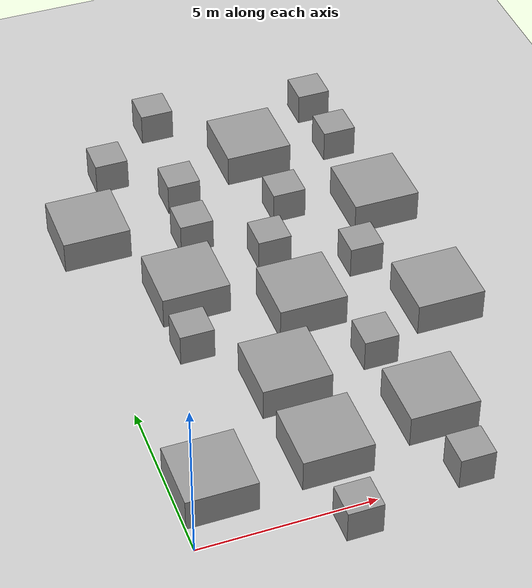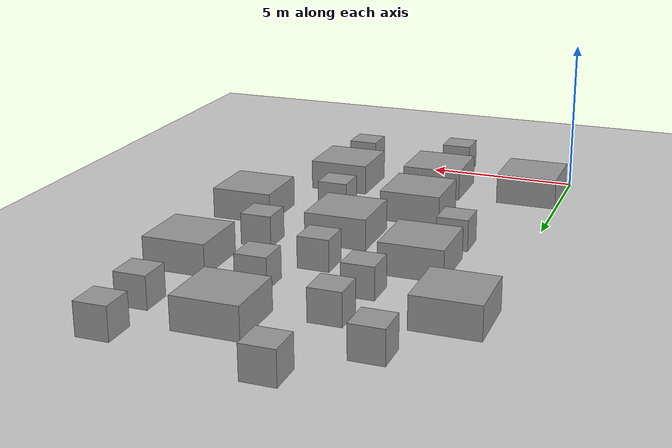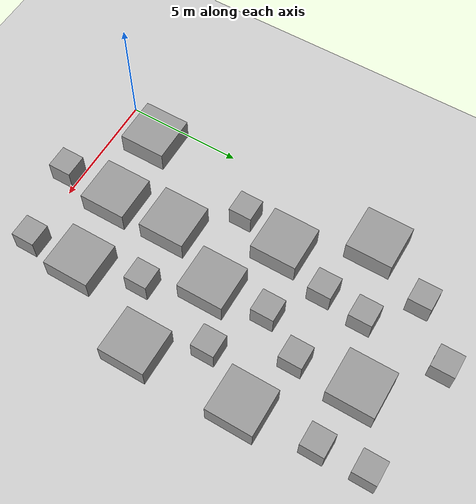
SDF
<sdf version="1.6">
 <world name="default">
  <model name="ground_plane">
   <static>1</static>
   <link name="link">
    <collision name="collision">
     <geometry><plane><normal>0 0 1</normal><size>100 100</size></plane></geometry>
     <surface><friction><ode><mu>100</mu><mu2>50</mu2></ode></friction></surface>
    </collision>
    <visual name="visual">
     <cast_shadows>0</cast_shadows>
     <geometry><plane><normal>0 0 1</normal><size>100 100</size></plane></geometry>
     <material>
      <script><uri>file://media/materials/scripts/gazebo.material</uri><name>Gazebo/Grey</name></script>
     </material>
    </visual>
   </link>
  </model>
  <model name="box3">
   <link name="link_0">
    <inertial>
     <mass>200</mass>
     <inertia><ixx>83.3333</ixx><ixy>0</ixy><ixz>0</ixz><iyy>83.3333</iyy><iyz>0</iyz><izz>133.333</izz></inertia>
     <pose>0 0 1 0 -0 0</pose>
    </inertial>
    <visual name="visual">
     <geometry><box><size>2 2 1</size></box></geometry>
     <material>
      <lighting>1</lighting>
      <script><uri>file://media/materials/scripts/gazebo.material</uri><name>Gazebo/Grey</name></script>
      <shader type="pixel"><normal_map>__default__</normal_map></shader>
      <ambient>0.3 0.3 0.3 1</ambient>
      <diffuse>0.7 0.7 0.7 1</diffuse>
      <specular>0.01 0.01 0.01 1</specular>
      <emissive>0 0 0 1</emissive>
     </material>
    </visual>
    <collision name="collision">
     <geometry><box><size>2 2 1</size></box></geometry>
     <surface>
      <friction>
       <ode><mu>1</mu><mu2>1</mu2><fdir1>0 0 0</fdir1><slip1>0</slip1><slip2>0</slip2></ode>
       <torsional>
        <coefficient>1</coefficient>
        <patch_radius>0</patch_radius>
        <surface_radius>0</surface_radius>
        <use_patch_radius>1</use_patch_radius>
        <ode><slip>0</slip></ode>
       </torsional>
      </friction>
      <bounce><restitution_coefficient>0</restitution_coefficient><threshold>1e+06</threshold></bounce>
      <contact>
       <collide_without_contact>0</collide_without_contact>
       <collide_without_contact_bitmask>1</collide_without_contact_bitmask>
       <collide_bitmask>1</collide_bitmask>
       <ode>
        <soft_cfm>0</soft_cfm>
        <soft_erp>0.2</soft_erp>
        <kp>1e+13</kp>
        <kd>1</kd>
        <max_vel>0.01</max_vel>
        <min_depth>0</min_depth>
       </ode>
       <bullet>
        <split_impulse>1</split_impulse>
        <split_impulse_penetration_threshold>-0.01</split_impulse_penetration_threshold>
        <soft_cfm>0</soft_cfm>
        <soft_erp>0.2</soft_erp>
        <kp>1e+13</kp>
        <kd>1</kd>
       </bullet>
      </contact>
     </surface>
    </collision>
   </link>
   <static>0</static>
   <pose>1.01568 1.72958 0.499999 -1e-06 -2e-06 4.8e-05</pose>
  </model>
  <model name="box3_clone">
   <link name="link_0">
    <inertial>
     <mass>200</mass>
     <inertia><ixx>83.3333</ixx><ixy>0</ixy><ixz>0</ixz><iyy>83.3333</iyy><iyz>0</iyz><izz>133.333</izz></inertia>
     <pose>0 0 1 0 -0 0</pose>
    </inertial>
    <visual name="visual">
     <geometry><box><size>2 2 1</size></box></geometry>
     <material>
      <lighting>1</lighting>
      <script><uri>file://media/materials/scripts/gazebo.material</uri><name>Gazebo/Grey</name></script>
      <shader type="pixel"><normal_map>__default__</normal_map></shader>
      <ambient>0.3 0.3 0.3 1</ambient>
      <diffuse>0.7 0.7 0.7 1</diffuse>
      <specular>0.01 0.01 0.01 1</specular>
      <emissive>0 0 0 1</emissive>
     </material>
    </visual>
    <collision name="collision">
     <geometry><box><size>2 2 1</size></box></geometry>
     <surface>
      <friction>
       <ode><mu>1</mu><mu2>1</mu2><fdir1>0 0 0</fdir1><slip1>0</slip1><slip2>0</slip2></ode>
       <torsional>
        <coefficient>1</coefficient>
        <patch_radius>0</patch_radius>
        <surface_radius>0</surface_radius>
        <use_patch_radius>1</use_patch_radius>
        <ode><slip>0</slip></ode>
       </torsional>
      </friction>
      <bounce><restitution_coefficient>0</restitution_coefficient><threshold>1e+06</threshold></bounce>
      <contact>
       <collide_without_contact>0</collide_without_contact>
       <collide_without_contact_bitmask>1</collide_without_contact_bitmask>
       <collide_bitmask>1</collide_bitmask>
       <ode>
        <soft_cfm>0</soft_cfm>
        <soft_erp>0.2</soft_erp>
        <kp>1e+13</kp>
        <kd>1</kd>
        <max_vel>0.01</max_vel>
        <min_depth>0</min_depth>
       </ode>
       <bullet>
        <split_impulse>1</split_impulse>
        <split_impulse_penetration_threshold>-0.01</split_impulse_penetration_threshold>
        <soft_cfm>0</soft_cfm>
        <soft_erp>0.2</soft_erp>
        <kp>1e+13</kp>
        <kd>1</kd>
       </bullet>
      </contact>
     </surface>
    </collision>
   </link>
   <static>0</static>
   <pose>4.28423 1.95795 0.499996 1e-06 3e-06 0.000328</pose>
  </model>
  <model name="box3_clone_0">
   <link name="link_0">
    <inertial>
     <mass>200</mass>
     <inertia><ixx>83.3333</ixx><ixy>0</ixy><ixz>0</ixz><iyy>83.3333</iyy><iyz>0</iyz><izz>133.333</izz></inertia>
     <pose>0 0 1 0 -0 0</pose>
    </inertial>
    <visual name="visual">
     <geometry><box><size>2 2 1</size></box></geometry>
     <material>
      <lighting>1</lighting>
      <script><uri>file://media/materials/scripts/gazebo.material</uri><name>Gazebo/Grey</name></script>
      <shader type="pixel"><normal_map>__default__</normal_map></shader>
      <ambient>0.3 0.3 0.3 1</ambient>
      <diffuse>0.7 0.7 0.7 1</diffuse>
      <specular>0.01 0.01 0.01 1</specular>
      <emissive>0 0 0 1</emissive>
     </material>
    </visual>
    <collision name="collision">
     <geometry><box><size>2 2 1</size></box></geometry>
     <surface>
      <friction>
       <ode><mu>1</mu><mu2>1</mu2><fdir1>0 0 0</fdir1><slip1>0</slip1><slip2>0</slip2></ode>
       <torsional>
        <coefficient>1</coefficient>
        <patch_radius>0</patch_radius>
        <surface_radius>0</surface_radius>
        <use_patch_radius>1</use_patch_radius>
        <ode><slip>0</slip></ode>
       </torsional>
      </friction>
      <bounce><restitution_coefficient>0</restitution_coefficient><threshold>1e+06</threshold></bounce>
      <contact>
       <collide_without_contact>0</collide_without_contact>
       <collide_without_contact_bitmask>1</collide_without_contact_bitmask>
       <collide_bitmask>1</collide_bitmask>
       <ode>
        <soft_cfm>0</soft_cfm>
        <soft_erp>0.2</soft_erp>
        <kp>1e+13</kp>
        <kd>1</kd>
        <max_vel>0.01</max_vel>
        <min_depth>0</min_depth>
       </ode>
       <bullet>
        <split_impulse>1</split_impulse>
        <split_impulse_penetration_threshold>-0.01</split_impulse_penetration_threshold>
        <soft_cfm>0</soft_cfm>
        <soft_erp>0.2</soft_erp>
        <kp>1e+13</kp>
        <kd>1</kd>
       </bullet>
      </contact>
     </surface>
    </collision>
   </link>
   <static>0</static>
   <pose>7.49997 2.45483 0.499996 3e-06 1e-06 0.00012</pose>
  </model>
  <model name="box3_clone_1">
   <link name="link_0">
    <inertial>
     <mass>200</mass>
     <inertia><ixx>83.3333</ixx><ixy>0</ixy><ixz>0</ixz><iyy>83.3333</iyy><iyz>0</iyz><izz>133.333</izz></inertia>
     <pose>0 0 1 0 -0 0</pose>
    </inertial>
    <visual name="visual">
     <geometry><box><size>2 2 1</size></box></geometry>
     <material>
      <lighting>1</lighting>
      <script><uri>file://media/materials/scripts/gazebo.material</uri><name>Gazebo/Grey</name></script>
      <shader type="pixel"><normal_map>__default__</normal_map></shader>
      <ambient>0.3 0.3 0.3 1</ambient>
      <diffuse>0.7 0.7 0.7 1</diffuse>
      <specular>0.01 0.01 0.01 1</specular>
      <emissive>0 0 0 1</emissive>
     </material>
    </visual>
    <collision name="collision">
     <geometry><box><size>2 2 1</size></box></geometry>
     <surface>
      <friction>
       <ode><mu>1</mu><mu2>1</mu2><fdir1>0 0 0</fdir1><slip1>0</slip1><slip2>0</slip2></ode>
       <torsional>
        <coefficient>1</coefficient>
        <patch_radius>0</patch_radius>
        <surface_radius>0</surface_radius>
        <use_patch_radius>1</use_patch_radius>
        <ode><slip>0</slip></ode>
       </torsional>
      </friction>
      <bounce><restitution_coefficient>0</restitution_coefficient><threshold>1e+06</threshold></bounce>
      <contact>
       <collide_without_contact>0</collide_without_contact>
       <collide_without_contact_bitmask>1</collide_without_contact_bitmask>
       <collide_bitmask>1</collide_bitmask>
       <ode>
        <soft_cfm>0</soft_cfm>
        <soft_erp>0.2</soft_erp>
        <kp>1e+13</kp>
        <kd>1</kd>
        <max_vel>0.01</max_vel>
        <min_depth>0</min_depth>
       </ode>
       <bullet>
        <split_impulse>1</split_impulse>
        <split_impulse_penetration_threshold>-0.01</split_impulse_penetration_threshold>
        <soft_cfm>0</soft_cfm>
        <soft_erp>0.2</soft_erp>
        <kp>1e+13</kp>
        <kd>1</kd>
       </bullet>
      </contact>
     </surface>
    </collision>
   </link>
   <static>0</static>
   <pose>4.18679 4.69973 0.499996 -1e-06 -3e-06 0.00033</pose>
  </model>
  <model name="box_clone_1">
   <link name="link_3">
    <inertial>
     <mass>1</mass>
     <inertia>
      <ixx>0.166667</ixx>
      <ixy>0</ixy>
      <ixz>0</ixz>
      <iyy>0.166667</iyy>
      <iyz>0</iyz>
      <izz>0.166667</izz>
     </inertia>
    </inertial>
    <pose>-0.10623 1.19174 0.5 0 -0 0</pose>
    <visual name="visual">
     <geometry><box><size>1 1 1</size></box></geometry>
     <material>
      <lighting>1</lighting>
      <script><uri>file://media/materials/scripts/gazebo.material</uri><name>Gazebo/Grey</name></script>
      <shader type="pixel"/>
     </material>
    </visual>
    <collision name="collision">
     <geometry><box><size>1 1 1</size></box></geometry>
     <surface>
      <friction>
       <ode><mu>1</mu><mu2>1</mu2><fdir1>0 0 0</fdir1><slip1>0</slip1><slip2>0</slip2></ode>
       <torsional>
        <coefficient>1</coefficient>
        <patch_radius>0</patch_radius>
        <surface_radius>0</surface_radius>
        <use_patch_radius>1</use_patch_radius>
        <ode><slip>0</slip></ode>
       </torsional>
      </friction>
      <bounce><restitution_coefficient>0</restitution_coefficient><threshold>1e+06</threshold></bounce>
      <contact>
       <collide_without_contact>0</collide_without_contact>
       <collide_without_contact_bitmask>1</collide_without_contact_bitmask>
       <collide_bitmask>1</collide_bitmask>
       <ode>
        <soft_cfm>0</soft_cfm>
        <soft_erp>0.2</soft_erp>
        <kp>1e+13</kp>
        <kd>1</kd>
        <max_vel>0.01</max_vel>
        <min_depth>0</min_depth>
       </ode>
       <bullet>
        <split_impulse>1</split_impulse>
        <split_impulse_penetration_threshold>-0.01</split_impulse_penetration_threshold>
        <soft_cfm>0</soft_cfm>
        <soft_erp>0.2</soft_erp>
        <kp>1e+13</kp>
        <kd>1</kd>
       </bullet>
      </contact>
     </surface>
    </collision>
   </link>
   <static>0</static>
   <pose>2.36939 5.72598 0 0 -0 0</pose>
  </model>
  <model name="box3_clone_1_clone">
   <link name="link_0">
    <inertial>
     <mass>200</mass>
     <inertia><ixx>83.3333</ixx><ixy>0</ixy><ixz>0</ixz><iyy>83.3333</iyy><iyz>0</iyz><izz>133.333</izz></inertia>
     <pose>0 0 1 0 -0 0</pose>
    </inertial>
    <visual name="visual">
     <geometry><box><size>2 2 1</size></box></geometry>
     <material>
      <lighting>1</lighting>
      <script><uri>file://media/materials/scripts/gazebo.material</uri><name>Gazebo/Grey</name></script>
      <shader type="pixel"><normal_map>__default__</normal_map></shader>
      <ambient>0.3 0.3 0.3 1</ambient>
      <diffuse>0.7 0.7 0.7 1</diffuse>
      <specular>0.01 0.01 0.01 1</specular>
      <emissive>0 0 0 1</emissive>
     </material>
    </visual>
    <collision name="collision">
     <geometry><box><size>2 2 1</size></box></geometry>
     <surface>
      <friction>
       <ode><mu>1</mu><mu2>1</mu2><fdir1>0 0 0</fdir1><slip1>0</slip1><slip2>0</slip2></ode>
       <torsional>
        <coefficient>1</coefficient>
        <patch_radius>0</patch_radius>
        <surface_radius>0</surface_radius>
        <use_patch_radius>1</use_patch_radius>
        <ode><slip>0</slip></ode>
       </torsional>
      </friction>
      <bounce><restitution_coefficient>0</restitution_coefficient><threshold>1e+06</threshold></bounce>
      <contact>
       <collide_without_contact>0</collide_without_contact>
       <collide_without_contact_bitmask>1</collide_without_contact_bitmask>
       <collide_bitmask>1</collide_bitmask>
       <ode>
        <soft_cfm>0</soft_cfm>
        <soft_erp>0.2</soft_erp>
        <kp>1e+13</kp>
        <kd>1</kd>
        <max_vel>0.01</max_vel>
        <min_depth>0</min_depth>
       </ode>
       <bullet>
        <split_impulse>1</split_impulse>
        <split_impulse_penetration_threshold>-0.01</split_impulse_penetration_threshold>
        <soft_cfm>0</soft_cfm>
        <soft_erp>0.2</soft_erp>
        <kp>1e+13</kp>
        <kd>1</kd>
       </bullet>
      </contact>
     </surface>
    </collision>
   </link>
   <static>0</static>
   <pose>2.77209 8.98695 0.499996 3e-06 1e-06 0.000347</pose>
  </model>
  <model name="box3_clone_1_clone_0">
   <link name="link_0">
    <inertial>
     <mass>200</mass>
     <inertia><ixx>83.3333</ixx><ixy>0</ixy><ixz>0</ixz><iyy>83.3333</iyy><iyz>0</iyz><izz>133.333</izz></inertia>
     <pose>0 0 1 0 -0 0</pose>
    </inertial>
    <visual name="visual">
     <geometry><box><size>2 2 1</size></box></geometry>
     <material>
      <lighting>1</lighting>
      <script><uri>file://media/materials/scripts/gazebo.material</uri><name>Gazebo/Grey</name></script>
      <shader type="pixel"><normal_map>__default__</normal_map></shader>
      <ambient>0.3 0.3 0.3 1</ambient>
      <diffuse>0.7 0.7 0.7 1</diffuse>
      <specular>0.01 0.01 0.01 1</specular>
      <emissive>0 0 0 1</emissive>
     </material>
    </visual>
    <collision name="collision">
     <geometry><box><size>2 2 1</size></box></geometry>
     <surface>
      <friction>
       <ode><mu>1</mu><mu2>1</mu2><fdir1>0 0 0</fdir1><slip1>0</slip1><slip2>0</slip2></ode>
       <torsional>
        <coefficient>1</coefficient>
        <patch_radius>0</patch_radius>
        <surface_radius>0</surface_radius>
        <use_patch_radius>1</use_patch_radius>
        <ode><slip>0</slip></ode>
       </torsional>
      </friction>
      <bounce><restitution_coefficient>0</restitution_coefficient><threshold>1e+06</threshold></bounce>
      <contact>
       <collide_without_contact>0</collide_without_contact>
       <collide_without_contact_bitmask>1</collide_without_contact_bitmask>
       <collide_bitmask>1</collide_bitmask>
       <ode>
        <soft_cfm>0</soft_cfm>
        <soft_erp>0.2</soft_erp>
        <kp>1e+13</kp>
        <kd>1</kd>
        <max_vel>0.01</max_vel>
        <min_depth>0</min_depth>
       </ode>
       <bullet>
        <split_impulse>1</split_impulse>
        <split_impulse_penetration_threshold>-0.01</split_impulse_penetration_threshold>
        <soft_cfm>0</soft_cfm>
        <soft_erp>0.2</soft_erp>
        <kp>1e+13</kp>
        <kd>1</kd>
       </bullet>
      </contact>
     </surface>
    </collision>
   </link>
   <static>0</static>
   <pose>5.69777 7.42639 0.5 0 -0 0.000652</pose>
  </model>
  <model name="box_clone_1_clone">
   <link name="link_3">
    <inertial>
     <mass>1</mass>
     <inertia>
      <ixx>0.166667</ixx>
      <ixy>0</ixy>
      <ixz>0</ixz>
      <iyy>0.166667</iyy>
      <iyz>0</iyz>
      <izz>0.166667</izz>
     </inertia>
    </inertial>
    <pose>-0.10623 1.19174 0.5 0 -0 0</pose>
    <visual name="visual">
     <geometry><box><size>1 1 1</size></box></geometry>
     <material>
      <lighting>1</lighting>
      <script><uri>file://media/materials/scripts/gazebo.material</uri><name>Gazebo/Grey</name></script>
      <shader type="pixel"/>
     </material>
    </visual>
    <collision name="collision">
     <geometry><box><size>1 1 1</size></box></geometry>
     <surface>
      <friction>
       <ode><mu>1</mu><mu2>1</mu2><fdir1>0 0 0</fdir1><slip1>0</slip1><slip2>0</slip2></ode>
       <torsional>
        <coefficient>1</coefficient>
        <patch_radius>0</patch_radius>
        <surface_radius>0</surface_radius>
        <use_patch_radius>1</use_patch_radius>
        <ode><slip>0</slip></ode>
       </torsional>
      </friction>
      <bounce><restitution_coefficient>0</restitution_coefficient><threshold>1e+06</threshold></bounce>
      <contact>
       <collide_without_contact>0</collide_without_contact>
       <collide_without_contact_bitmask>1</collide_without_contact_bitmask>
       <collide_bitmask>1</collide_bitmask>
       <ode>
        <soft_cfm>0</soft_cfm>
        <soft_erp>0.2</soft_erp>
        <kp>1e+13</kp>
        <kd>1</kd>
        <max_vel>0.01</max_vel>
        <min_depth>0</min_depth>
       </ode>
       <bullet>
        <split_impulse>1</split_impulse>
        <split_impulse_penetration_threshold>-0.01</split_impulse_penetration_threshold>
        <soft_cfm>0</soft_cfm>
        <soft_erp>0.2</soft_erp>
        <kp>1e+13</kp>
        <kd>1</kd>
       </bullet>
      </contact>
     </surface>
    </collision>
   </link>
   <static>0</static>
   <pose>7.04939 3.79897 0 0 -0 0</pose>
  </model>
  <model name="box3_clone_0_clone">
   <link name="link_0">
    <inertial>
     <mass>200</mass>
     <inertia><ixx>83.3333</ixx><ixy>0</ixy><ixz>0</ixz><iyy>83.3333</iyy><iyz>0</iyz><izz>133.333</izz></inertia>
     <pose>0 0 1 0 -0 0</pose>
    </inertial>
    <visual name="visual">
     <geometry><box><size>2 2 1</size></box></geometry>
     <material>
      <lighting>1</lighting>
      <script><uri>file://media/materials/scripts/gazebo.material</uri><name>Gazebo/Grey</name></script>
      <shader type="pixel"><normal_map>__default__</normal_map></shader>
      <ambient>0.3 0.3 0.3 1</ambient>
      <diffuse>0.7 0.7 0.7 1</diffuse>
      <specular>0.01 0.01 0.01 1</specular>
      <emissive>0 0 0 1</emissive>
     </material>
    </visual>
    <collision name="collision">
     <geometry><box><size>2 2 1</size></box></geometry>
     <surface>
      <friction>
       <ode><mu>1</mu><mu2>1</mu2><fdir1>0 0 0</fdir1><slip1>0</slip1><slip2>0</slip2></ode>
       <torsional>
        <coefficient>1</coefficient>
        <patch_radius>0</patch_radius>
        <surface_radius>0</surface_radius>
        <use_patch_radius>1</use_patch_radius>
        <ode><slip>0</slip></ode>
       </torsional>
      </friction>
      <bounce><restitution_coefficient>0</restitution_coefficient><threshold>1e+06</threshold></bounce>
      <contact>
       <collide_without_contact>0</collide_without_contact>
       <collide_without_contact_bitmask>1</collide_without_contact_bitmask>
       <collide_bitmask>1</collide_bitmask>
       <ode>
        <soft_cfm>0</soft_cfm>
        <soft_erp>0.2</soft_erp>
        <kp>1e+13</kp>
        <kd>1</kd>
        <max_vel>0.01</max_vel>
        <min_depth>0</min_depth>
       </ode>
       <bullet>
        <split_impulse>1</split_impulse>
        <split_impulse_penetration_threshold>-0.01</split_impulse_penetration_threshold>
        <soft_cfm>0</soft_cfm>
        <soft_erp>0.2</soft_erp>
        <kp>1e+13</kp>
        <kd>1</kd>
       </bullet>
      </contact>
     </surface>
    </collision>
   </link>
   <static>0</static>
   <pose>9.39449 6.3108 0.499996 3e-06 -1e-06 0.000264</pose>
  </model>
  <model name="box3_clone_0_clone_0">
   <link name="link_0">
    <inertial>
     <mass>200</mass>
     <inertia><ixx>83.3333</ixx><ixy>0</ixy><ixz>0</ixz><iyy>83.3333</iyy><iyz>0</iyz><izz>133.333</izz></inertia>
     <pose>0 0 1 0 -0 0</pose>
    </inertial>
    <visual name="visual">
     <geometry><box><size>2 2 1</size></box></geometry>
     <material>
      <lighting>1</lighting>
      <script><uri>file://media/materials/scripts/gazebo.material</uri><name>Gazebo/Grey</name></script>
      <shader type="pixel"><normal_map>__default__</normal_map></shader>
      <ambient>0.3 0.3 0.3 1</ambient>
      <diffuse>0.7 0.7 0.7 1</diffuse>
      <specular>0.01 0.01 0.01 1</specular>
      <emissive>0 0 0 1</emissive>
     </material>
    </visual>
    <collision name="collision">
     <geometry><box><size>2 2 1</size></box></geometry>
     <surface>
      <friction>
       <ode><mu>1</mu><mu2>1</mu2><fdir1>0 0 0</fdir1><slip1>0</slip1><slip2>0</slip2></ode>
       <torsional>
        <coefficient>1</coefficient>
        <patch_radius>0</patch_radius>
        <surface_radius>0</surface_radius>
        <use_patch_radius>1</use_patch_radius>
        <ode><slip>0</slip></ode>
       </torsional>
      </friction>
      <bounce><restitution_coefficient>0</restitution_coefficient><threshold>1e+06</threshold></bounce>
      <contact>
       <collide_without_contact>0</collide_without_contact>
       <collide_without_contact_bitmask>1</collide_without_contact_bitmask>
       <collide_bitmask>1</collide_bitmask>
       <ode>
        <soft_cfm>0</soft_cfm>
        <soft_erp>0.2</soft_erp>
        <kp>1e+13</kp>
        <kd>1</kd>
        <max_vel>0.01</max_vel>
        <min_depth>0</min_depth>
       </ode>
       <bullet>
        <split_impulse>1</split_impulse>
        <split_impulse_penetration_threshold>-0.01</split_impulse_penetration_threshold>
        <soft_cfm>0</soft_cfm>
        <soft_erp>0.2</soft_erp>
        <kp>1e+13</kp>
        <kd>1</kd>
       </bullet>
      </contact>
     </surface>
    </collision>
   </link>
   <static>0</static>
   <pose>9.34656 10.8996 0.5 0 -0 0.000214</pose>
  </model>
  <model name="box_clone_1_clone_clone">
   <link name="link_3">
    <inertial>
     <mass>1</mass>
     <inertia>
      <ixx>0.166667</ixx>
      <ixy>0</ixy>
      <ixz>0</ixz>
      <iyy>0.166667</iyy>
      <iyz>0</iyz>
      <izz>0.166667</izz>
     </inertia>
    </inertial>
    <pose>-0.10623 1.19174 0.5 0 -0 0</pose>
    <visual name="visual">
     <geometry><box><size>1 1 1</size></box></geometry>
     <material>
      <lighting>1</lighting>
      <script><uri>file://media/materials/scripts/gazebo.material</uri><name>Gazebo/Grey</name></script>
      <shader type="pixel"/>
     </material>
    </visual>
    <collision name="collision">
     <geometry><box><size>1 1 1</size></box></geometry>
     <surface>
      <friction>
       <ode><mu>1</mu><mu2>1</mu2><fdir1>0 0 0</fdir1><slip1>0</slip1><slip2>0</slip2></ode>
       <torsional>
        <coefficient>1</coefficient>
        <patch_radius>0</patch_radius>
        <surface_radius>0</surface_radius>
        <use_patch_radius>1</use_patch_radius>
        <ode><slip>0</slip></ode>
       </torsional>
      </friction>
      <bounce><restitution_coefficient>0</restitution_coefficient><threshold>1e+06</threshold></bounce>
      <contact>
       <collide_without_contact>0</collide_without_contact>
       <collide_without_contact_bitmask>1</collide_without_contact_bitmask>
       <collide_bitmask>1</collide_bitmask>
       <ode>
        <soft_cfm>0</soft_cfm>
        <soft_erp>0.2</soft_erp>
        <kp>1e+13</kp>
        <kd>1</kd>
        <max_vel>0.01</max_vel>
        <min_depth>0</min_depth>
       </ode>
       <bullet>
        <split_impulse>1</split_impulse>
        <split_impulse_penetration_threshold>-0.01</split_impulse_penetration_threshold>
        <soft_cfm>0</soft_cfm>
        <soft_erp>0.2</soft_erp>
        <kp>1e+13</kp>
        <kd>1</kd>
       </bullet>
      </contact>
     </surface>
    </collision>
   </link>
   <static>0</static>
   <pose>8.11451 7.47935 -0 0 -0 0</pose>
  </model>
  <model name="box_clone_1_clone_clone_clone">
   <link name="link_3">
    <inertial>
     <mass>1</mass>
     <inertia>
      <ixx>0.166667</ixx>
      <ixy>0</ixy>
      <ixz>0</ixz>
      <iyy>0.166667</iyy>
      <iyz>0</iyz>
      <izz>0.166667</izz>
     </inertia>
    </inertial>
    <pose>-0.10623 1.19174 0.5 0 -0 0</pose>
    <visual name="visual">
     <geometry><box><size>1 1 1</size></box></geometry>
     <material>
      <lighting>1</lighting>
      <script><uri>file://media/materials/scripts/gazebo.material</uri><name>Gazebo/Grey</name></script>
      <shader type="pixel"/>
     </material>
    </visual>
    <collision name="collision">
     <geometry><box><size>1 1 1</size></box></geometry>
     <surface>
      <friction>
       <ode><mu>1</mu><mu2>1</mu2><fdir1>0 0 0</fdir1><slip1>0</slip1><slip2>0</slip2></ode>
       <torsional>
        <coefficient>1</coefficient>
        <patch_radius>0</patch_radius>
        <surface_radius>0</surface_radius>
        <use_patch_radius>1</use_patch_radius>
        <ode><slip>0</slip></ode>
       </torsional>
      </friction>
      <bounce><restitution_coefficient>0</restitution_coefficient><threshold>1e+06</threshold></bounce>
      <contact>
       <collide_without_contact>0</collide_without_contact>
       <collide_without_contact_bitmask>1</collide_without_contact_bitmask>
       <collide_bitmask>1</collide_bitmask>
       <ode>
        <soft_cfm>0</soft_cfm>
        <soft_erp>0.2</soft_erp>
        <kp>1e+13</kp>
        <kd>1</kd>
        <max_vel>0.01</max_vel>
        <min_depth>0</min_depth>
       </ode>
       <bullet>
        <split_impulse>1</split_impulse>
        <split_impulse_penetration_threshold>-0.01</split_impulse_penetration_threshold>
        <soft_cfm>0</soft_cfm>
        <soft_erp>0.2</soft_erp>
        <kp>1e+13</kp>
        <kd>1</kd>
       </bullet>
      </contact>
     </surface>
    </collision>
   </link>
   <static>0</static>
   <pose>5.72926 8.66382 0 0 -0 0</pose>
  </model>
  <model name="box_clone_1_clone_clone_clone_0">
   <link name="link_3">
    <inertial>
     <mass>1</mass>
     <inertia>
      <ixx>0.166667</ixx>
      <ixy>0</ixy>
      <ixz>0</ixz>
      <iyy>0.166667</iyy>
      <iyz>0</iyz>
      <izz>0.166667</izz>
     </inertia>
    </inertial>
    <pose>-0.10623 1.19174 0.5 0 -0 0</pose>
    <visual name="visual">
     <geometry><box><size>1 1 1</size></box></geometry>
     <material>
      <lighting>1</lighting>
      <script><uri>file://media/materials/scripts/gazebo.material</uri><name>Gazebo/Grey</name></script>
      <shader type="pixel"/>
     </material>
    </visual>
    <collision name="collision">
     <geometry><box><size>1 1 1</size></box></geometry>
     <surface>
      <friction>
       <ode><mu>1</mu><mu2>1</mu2><fdir1>0 0 0</fdir1><slip1>0</slip1><slip2>0</slip2></ode>
       <torsional>
        <coefficient>1</coefficient>
        <patch_radius>0</patch_radius>
        <surface_radius>0</surface_radius>
        <use_patch_radius>1</use_patch_radius>
        <ode><slip>0</slip></ode>
       </torsional>
      </friction>
      <bounce><restitution_coefficient>0</restitution_coefficient><threshold>1e+06</threshold></bounce>
      <contact>
       <collide_without_contact>0</collide_without_contact>
       <collide_without_contact_bitmask>1</collide_without_contact_bitmask>
       <collide_bitmask>1</collide_bitmask>
       <ode>
        <soft_cfm>0</soft_cfm>
        <soft_erp>0.2</soft_erp>
        <kp>1e+13</kp>
        <kd>1</kd>
        <max_vel>0.01</max_vel>
        <min_depth>0</min_depth>
       </ode>
       <bullet>
        <split_impulse>1</split_impulse>
        <split_impulse_penetration_threshold>-0.01</split_impulse_penetration_threshold>
        <soft_cfm>0</soft_cfm>
        <soft_erp>0.2</soft_erp>
        <kp>1e+13</kp>
        <kd>1</kd>
       </bullet>
      </contact>
     </surface>
    </collision>
   </link>
   <static>0</static>
   <pose>3.8214 10.078 0 0 -0 0</pose>
  </model>
  <model name="box_clone_1_clone_clone_clone_1">
   <link name="link_3">
    <inertial>
     <mass>1</mass>
     <inertia>
      <ixx>0.166667</ixx>
      <ixy>0</ixy>
      <ixz>0</ixz>
      <iyy>0.166667</iyy>
      <iyz>0</iyz>
      <izz>0.166667</izz>
     </inertia>
    </inertial>
    <pose>-0.10623 1.19174 0.5 0 -0 0</pose>
    <visual name="visual">
     <geometry><box><size>1 1 1</size></box></geometry>
     <material>
      <lighting>1</lighting>
      <script><uri>file://media/materials/scripts/gazebo.material</uri><name>Gazebo/Grey</name></script>
      <shader type="pixel"/>
     </material>
    </visual>
    <collision name="collision">
     <geometry><box><size>1 1 1</size></box></geometry>
     <surface>
      <friction>
       <ode><mu>1</mu><mu2>1</mu2><fdir1>0 0 0</fdir1><slip1>0</slip1><slip2>0</slip2></ode>
       <torsional>
        <coefficient>1</coefficient>
        <patch_radius>0</patch_radius>
        <surface_radius>0</surface_radius>
        <use_patch_radius>1</use_patch_radius>
        <ode><slip>0</slip></ode>
       </torsional>
      </friction>
      <bounce><restitution_coefficient>0</restitution_coefficient><threshold>1e+06</threshold></bounce>
      <contact>
       <collide_without_contact>0</collide_without_contact>
       <collide_without_contact_bitmask>1</collide_without_contact_bitmask>
       <collide_bitmask>1</collide_bitmask>
       <ode>
        <soft_cfm>0</soft_cfm>
        <soft_erp>0.2</soft_erp>
        <kp>1e+13</kp>
        <kd>1</kd>
        <max_vel>0.01</max_vel>
        <min_depth>0</min_depth>
       </ode>
       <bullet>
        <split_impulse>1</split_impulse>
        <split_impulse_penetration_threshold>-0.01</split_impulse_penetration_threshold>
        <soft_cfm>0</soft_cfm>
        <soft_erp>0.2</soft_erp>
        <kp>1e+13</kp>
        <kd>1</kd>
       </bullet>
      </contact>
     </surface>
    </collision>
   </link>
   <static>0</static>
   <pose>6.85987 10.4948 0 0 -0 0</pose>
  </model>
  <model name="box3_clone_1_clone_clone">
   <link name="link_0">
    <inertial>
     <mass>200</mass>
     <inertia><ixx>83.3333</ixx><ixy>0</ixy><ixz>0</ixz><iyy>83.3333</iyy><iyz>0</iyz><izz>133.333</izz></inertia>
     <pose>0 0 1 0 -0 0</pose>
    </inertial>
    <visual name="visual">
     <geometry><box><size>2 2 1</size></box></geometry>
     <material>
      <lighting>1</lighting>
      <script><uri>file://media/materials/scripts/gazebo.material</uri><name>Gazebo/Grey</name></script>
      <shader type="pixel"><normal_map>__default__</normal_map></shader>
      <ambient>0.3 0.3 0.3 1</ambient>
      <diffuse>0.7 0.7 0.7 1</diffuse>
      <specular>0.01 0.01 0.01 1</specular>
      <emissive>0 0 0 1</emissive>
     </material>
    </visual>
    <collision name="collision">
     <geometry><box><size>2 2 1</size></box></geometry>
     <surface>
      <friction>
       <ode><mu>1</mu><mu2>1</mu2><fdir1>0 0 0</fdir1><slip1>0</slip1><slip2>0</slip2></ode>
       <torsional>
        <coefficient>1</coefficient>
        <patch_radius>0</patch_radius>
        <surface_radius>0</surface_radius>
        <use_patch_radius>1</use_patch_radius>
        <ode><slip>0</slip></ode>
       </torsional>
      </friction>
      <bounce><restitution_coefficient>0</restitution_coefficient><threshold>1e+06</threshold></bounce>
      <contact>
       <collide_without_contact>0</collide_without_contact>
       <collide_without_contact_bitmask>1</collide_without_contact_bitmask>
       <collide_bitmask>1</collide_bitmask>
       <ode>
        <soft_cfm>0</soft_cfm>
        <soft_erp>0.2</soft_erp>
        <kp>1e+13</kp>
        <kd>1</kd>
        <max_vel>0.01</max_vel>
        <min_depth>0</min_depth>
       </ode>
       <bullet>
        <split_impulse>1</split_impulse>
        <split_impulse_penetration_threshold>-0.01</split_impulse_penetration_threshold>
        <soft_cfm>0</soft_cfm>
        <soft_erp>0.2</soft_erp>
        <kp>1e+13</kp>
        <kd>1</kd>
       </bullet>
      </contact>
     </surface>
    </collision>
   </link>
   <static>0</static>
   <pose>0.81875 12.1837 0.499997 0 3e-06 0.0006</pose>
  </model>
  <model name="box3_clone_1_clone_clone_0_clone">
   <link name="link_0">
    <inertial>
     <mass>200</mass>
     <inertia><ixx>83.3333</ixx><ixy>0</ixy><ixz>0</ixz><iyy>83.3333</iyy><iyz>0</iyz><izz>133.333</izz></inertia>
     <pose>0 0 1 0 -0 0</pose>
    </inertial>
    <visual name="visual">
     <geometry><box><size>2 2 1</size></box></geometry>
     <material>
      <lighting>1</lighting>
      <script><uri>file://media/materials/scripts/gazebo.material</uri><name>Gazebo/Grey</name></script>
      <shader type="pixel"><normal_map>__default__</normal_map></shader>
      <ambient>0.3 0.3 0.3 1</ambient>
      <diffuse>0.7 0.7 0.7 1</diffuse>
      <specular>0.01 0.01 0.01 1</specular>
      <emissive>0 0 0 1</emissive>
     </material>
    </visual>
    <collision name="collision">
     <geometry><box><size>2 2 1</size></box></geometry>
     <surface>
      <friction>
       <ode><mu>1</mu><mu2>1</mu2><fdir1>0 0 0</fdir1><slip1>0</slip1><slip2>0</slip2></ode>
       <torsional>
        <coefficient>1</coefficient>
        <patch_radius>0</patch_radius>
        <surface_radius>0</surface_radius>
        <use_patch_radius>1</use_patch_radius>
        <ode><slip>0</slip></ode>
       </torsional>
      </friction>
      <bounce><restitution_coefficient>0</restitution_coefficient><threshold>1e+06</threshold></bounce>
      <contact>
       <collide_without_contact>0</collide_without_contact>
       <collide_without_contact_bitmask>1</collide_without_contact_bitmask>
       <collide_bitmask>1</collide_bitmask>
       <ode>
        <soft_cfm>0</soft_cfm>
        <soft_erp>0.2</soft_erp>
        <kp>1e+13</kp>
        <kd>1</kd>
        <max_vel>0.01</max_vel>
        <min_depth>0</min_depth>
       </ode>
       <bullet>
        <split_impulse>1</split_impulse>
        <split_impulse_penetration_threshold>-0.01</split_impulse_penetration_threshold>
        <soft_cfm>0</soft_cfm>
        <soft_erp>0.2</soft_erp>
        <kp>1e+13</kp>
        <kd>1</kd>
       </bullet>
      </contact>
     </surface>
    </collision>
   </link>
   <static>0</static>
   <pose>6.5669 14.3041 0.499996 -1e-06 3e-06 0.000715</pose>
  </model>
  <model name="box_clone_1_clone_clone_clone_0_clone">
   <link name="link_3">
    <inertial>
     <mass>1</mass>
     <inertia>
      <ixx>0.166667</ixx>
      <ixy>0</ixy>
      <ixz>0</ixz>
      <iyy>0.166667</iyy>
      <iyz>0</iyz>
      <izz>0.166667</izz>
     </inertia>
    </inertial>
    <pose>-0.10623 1.19174 0.5 0 -0 0</pose>
    <visual name="visual">
     <geometry><box><size>1 1 1</size></box></geometry>
     <material>
      <lighting>1</lighting>
      <script><uri>file://media/materials/scripts/gazebo.material</uri><name>Gazebo/Grey</name></script>
      <shader type="pixel"/>
     </material>
    </visual>
    <collision name="collision">
     <geometry><box><size>1 1 1</size></box></geometry>
     <surface>
      <friction>
       <ode><mu>1</mu><mu2>1</mu2><fdir1>0 0 0</fdir1><slip1>0</slip1><slip2>0</slip2></ode>
       <torsional>
        <coefficient>1</coefficient>
        <patch_radius>0</patch_radius>
        <surface_radius>0</surface_radius>
        <use_patch_radius>1</use_patch_radius>
        <ode><slip>0</slip></ode>
       </torsional>
      </friction>
      <bounce><restitution_coefficient>0</restitution_coefficient><threshold>1e+06</threshold></bounce>
      <contact>
       <collide_without_contact>0</collide_without_contact>
       <collide_without_contact_bitmask>1</collide_without_contact_bitmask>
       <collide_bitmask>1</collide_bitmask>
       <ode>
        <soft_cfm>0</soft_cfm>
        <soft_erp>0.2</soft_erp>
        <kp>1e+13</kp>
        <kd>1</kd>
        <max_vel>0.01</max_vel>
        <min_depth>0</min_depth>
       </ode>
       <bullet>
        <split_impulse>1</split_impulse>
        <split_impulse_penetration_threshold>-0.01</split_impulse_penetration_threshold>
        <soft_cfm>0</soft_cfm>
        <soft_erp>0.2</soft_erp>
        <kp>1e+13</kp>
        <kd>1</kd>
       </bullet>
      </contact>
     </surface>
    </collision>
   </link>
   <static>0</static>
   <pose>4.0442 11.9427 0 0 -0 0</pose>
  </model>
  <model name="box_clone_1_clone_clone_clone_0_clone_0">
   <link name="link_3">
    <inertial>
     <mass>1</mass>
     <inertia>
      <ixx>0.166667</ixx>
      <ixy>0</ixy>
      <ixz>0</ixz>
      <iyy>0.166667</iyy>
      <iyz>0</iyz>
      <izz>0.166667</izz>
     </inertia>
    </inertial>
    <pose>-0.10623 1.19174 0.5 0 -0 0</pose>
    <visual name="visual">
     <geometry><box><size>1 1 1</size></box></geometry>
     <material>
      <lighting>1</lighting>
      <script><uri>file://media/materials/scripts/gazebo.material</uri><name>Gazebo/Grey</name></script>
      <shader type="pixel"/>
     </material>
    </visual>
    <collision name="collision">
     <geometry><box><size>1 1 1</size></box></geometry>
     <surface>
      <friction>
       <ode><mu>1</mu><mu2>1</mu2><fdir1>0 0 0</fdir1><slip1>0</slip1><slip2>0</slip2></ode>
       <torsional>
        <coefficient>1</coefficient>
        <patch_radius>0</patch_radius>
        <surface_radius>0</surface_radius>
        <use_patch_radius>1</use_patch_radius>
        <ode><slip>0</slip></ode>
       </torsional>
      </friction>
      <bounce><restitution_coefficient>0</restitution_coefficient><threshold>1e+06</threshold></bounce>
      <contact>
       <collide_without_contact>0</collide_without_contact>
       <collide_without_contact_bitmask>1</collide_without_contact_bitmask>
       <collide_bitmask>1</collide_bitmask>
       <ode>
        <soft_cfm>0</soft_cfm>
        <soft_erp>0.2</soft_erp>
        <kp>1e+13</kp>
        <kd>1</kd>
        <max_vel>0.01</max_vel>
        <min_depth>0</min_depth>
       </ode>
       <bullet>
        <split_impulse>1</split_impulse>
        <split_impulse_penetration_threshold>-0.01</split_impulse_penetration_threshold>
        <soft_cfm>0</soft_cfm>
        <soft_erp>0.2</soft_erp>
        <kp>1e+13</kp>
        <kd>1</kd>
       </bullet>
      </contact>
     </surface>
    </collision>
   </link>
   <static>0</static>
   <pose>9.34524 12.7471 0 0 -0 0</pose>
  </model>
  <model name="box_clone_1_clone_clone_clone_0_clone_1">
   <link name="link_3">
    <inertial>
     <mass>1</mass>
     <inertia>
      <ixx>0.166667</ixx>
      <ixy>0</ixy>
      <ixz>0</ixz>
      <iyy>0.166667</iyy>
      <iyz>0</iyz>
      <izz>0.166667</izz>
     </inertia>
    </inertial>
    <pose>-0.10623 1.19174 0.5 0 -0 0</pose>
    <visual name="visual">
     <geometry><box><size>1 1 1</size></box></geometry>
     <material>
      <lighting>1</lighting>
      <script><uri>file://media/materials/scripts/gazebo.material</uri><name>Gazebo/Grey</name></script>
      <shader type="pixel"/>
     </material>
    </visual>
    <collision name="collision">
     <geometry><box><size>1 1 1</size></box></geometry>
     <surface>
      <friction>
       <ode><mu>1</mu><mu2>1</mu2><fdir1>0 0 0</fdir1><slip1>0</slip1><slip2>0</slip2></ode>
       <torsional>
        <coefficient>1</coefficient>
        <patch_radius>0</patch_radius>
        <surface_radius>0</surface_radius>
        <use_patch_radius>1</use_patch_radius>
        <ode><slip>0</slip></ode>
       </torsional>
      </friction>
      <bounce><restitution_coefficient>0</restitution_coefficient><threshold>1e+06</threshold></bounce>
      <contact>
       <collide_without_contact>0</collide_without_contact>
       <collide_without_contact_bitmask>1</collide_without_contact_bitmask>
       <collide_bitmask>1</collide_bitmask>
       <ode>
        <soft_cfm>0</soft_cfm>
        <soft_erp>0.2</soft_erp>
        <kp>1e+13</kp>
        <kd>1</kd>
        <max_vel>0.01</max_vel>
        <min_depth>0</min_depth>
       </ode>
       <bullet>
        <split_impulse>1</split_impulse>
        <split_impulse_penetration_threshold>-0.01</split_impulse_penetration_threshold>
        <soft_cfm>0</soft_cfm>
        <soft_erp>0.2</soft_erp>
        <kp>1e+13</kp>
        <kd>1</kd>
       </bullet>
      </contact>
     </surface>
    </collision>
   </link>
   <static>0</static>
   <pose>9.2739 14.7556 0 0 -0 0</pose>
  </model>
  <model name="box_clone_1_clone_clone_clone_0_clone_2">
   <link name="link_3">
    <inertial>
     <mass>1</mass>
     <inertia>
      <ixx>0.166667</ixx>
      <ixy>0</ixy>
      <ixz>0</ixz>
      <iyy>0.166667</iyy>
      <iyz>0</iyz>
      <izz>0.166667</izz>
     </inertia>
    </inertial>
    <pose>-0.10623 1.19174 0.5 0 -0 0</pose>
    <visual name="visual">
     <geometry><box><size>1 1 1</size></box></geometry>
     <material>
      <lighting>1</lighting>
      <script><uri>file://media/materials/scripts/gazebo.material</uri><name>Gazebo/Grey</name></script>
      <shader type="pixel"/>
     </material>
    </visual>
    <collision name="collision">
     <geometry><box><size>1 1 1</size></box></geometry>
     <surface>
      <friction>
       <ode><mu>1</mu><mu2>1</mu2><fdir1>0 0 0</fdir1><slip1>0</slip1><slip2>0</slip2></ode>
       <torsional>
        <coefficient>1</coefficient>
        <patch_radius>0</patch_radius>
        <surface_radius>0</surface_radius>
        <use_patch_radius>1</use_patch_radius>
        <ode><slip>0</slip></ode>
       </torsional>
      </friction>
      <bounce><restitution_coefficient>0</restitution_coefficient><threshold>1e+06</threshold></bounce>
      <contact>
       <collide_without_contact>0</collide_without_contact>
       <collide_without_contact_bitmask>1</collide_without_contact_bitmask>
       <collide_bitmask>1</collide_bitmask>
       <ode>
        <soft_cfm>0</soft_cfm>
        <soft_erp>0.2</soft_erp>
        <kp>1e+13</kp>
        <kd>1</kd>
        <max_vel>0.01</max_vel>
        <min_depth>0</min_depth>
       </ode>
       <bullet>
        <split_impulse>1</split_impulse>
        <split_impulse_penetration_threshold>-0.01</split_impulse_penetration_threshold>
        <soft_cfm>0</soft_cfm>
        <soft_erp>0.2</soft_erp>
        <kp>1e+13</kp>
        <kd>1</kd>
       </bullet>
      </contact>
     </surface>
    </collision>
   </link>
   <static>0</static>
   <pose>2.29098 13.5836 0 0 -0 0</pose>
  </model>
  <model name="box_clone_3_clone_2_clone_0">
   <link name="link_3">
    <inertial>
     <mass>1</mass>
     <inertia>
      <ixx>0.166667</ixx>
      <ixy>0</ixy>
      <ixz>0</ixz>
      <iyy>0.166667</iyy>
      <iyz>0</iyz>
      <izz>0.166667</izz>
     </inertia>
    </inertial>
    <pose>-0.10623 1.19174 0.5 0 -0 0</pose>
    <visual name="visual">
     <geometry><box><size>1 1 1</size></box></geometry>
     <material>
      <lighting>1</lighting>
      <script><uri>file://media/materials/scripts/gazebo.material</uri><name>Gazebo/Grey</name></script>
      <shader type="pixel"/>
     </material>
    </visual>
    <collision name="collision">
     <geometry><box><size>1 1 1</size></box></geometry>
     <surface>
      <friction>
       <ode><mu>1</mu><mu2>1</mu2><fdir1>0 0 0</fdir1><slip1>0</slip1><slip2>0</slip2></ode>
       <torsional>
        <coefficient>1</coefficient>
        <patch_radius>0</patch_radius>
        <surface_radius>0</surface_radius>
        <use_patch_radius>1</use_patch_radius>
        <ode><slip>0</slip></ode>
       </torsional>
      </friction>
      <bounce><restitution_coefficient>0</restitution_coefficient><threshold>1e+06</threshold></bounce>
      <contact>
       <collide_without_contact>0</collide_without_contact>
       <collide_without_contact_bitmask>1</collide_without_contact_bitmask>
       <collide_bitmask>1</collide_bitmask>
       <ode>
        <soft_cfm>0</soft_cfm>
        <soft_erp>0.2</soft_erp>
        <kp>1e+13</kp>
        <kd>1</kd>
        <max_vel>0.01</max_vel>
        <min_depth>0</min_depth>
       </ode>
       <bullet>
        <split_impulse>1</split_impulse>
        <split_impulse_penetration_threshold>-0.01</split_impulse_penetration_threshold>
        <soft_cfm>0</soft_cfm>
        <soft_erp>0.2</soft_erp>
        <kp>1e+13</kp>
        <kd>1</kd>
       </bullet>
      </contact>
     </surface>
    </collision>
   </link>
   <static>0</static>
   <pose>4.33206 -1.71709 -0 0 0 -3e-06</pose>
  </model>
  <model name="box_clone_3_clone_2_clone_3">
   <link name="link_3">
    <inertial>
     <mass>1</mass>
     <inertia>
      <ixx>0.166667</ixx>
      <ixy>0</ixy>
      <ixz>0</ixz>
      <iyy>0.166667</iyy>
      <iyz>0</iyz>
      <izz>0.166667</izz>
     </inertia>
    </inertial>
    <pose>-0.10623 1.19174 0.5 0 -0 0</pose>
    <visual name="visual">
     <geometry><box><size>1 1 1</size></box></geometry>
     <material>
      <lighting>1</lighting>
      <script><uri>file://media/materials/scripts/gazebo.material</uri><name>Gazebo/Grey</name></script>
      <shader type="pixel"/>
     </material>
    </visual>
    <collision name="collision">
     <geometry><box><size>1 1 1</size></box></geometry>
     <surface>
      <friction>
       <ode><mu>1</mu><mu2>1</mu2><fdir1>0 0 0</fdir1><slip1>0</slip1><slip2>0</slip2></ode>
       <torsional>
        <coefficient>1</coefficient>
        <patch_radius>0</patch_radius>
        <surface_radius>0</surface_radius>
        <use_patch_radius>1</use_patch_radius>
        <ode><slip>0</slip></ode>
       </torsional>
      </friction>
      <bounce><restitution_coefficient>0</restitution_coefficient><threshold>1e+06</threshold></bounce>
      <contact>
       <collide_without_contact>0</collide_without_contact>
       <collide_without_contact_bitmask>1</collide_without_contact_bitmask>
       <collide_bitmask>1</collide_bitmask>
       <ode>
        <soft_cfm>0</soft_cfm>
        <soft_erp>0.2</soft_erp>
        <kp>1e+13</kp>
        <kd>1</kd>
        <max_vel>0.01</max_vel>
        <min_depth>0</min_depth>
       </ode>
       <bullet>
        <split_impulse>1</split_impulse>
        <split_impulse_penetration_threshold>-0.01</split_impulse_penetration_threshold>
        <soft_cfm>0</soft_cfm>
        <soft_erp>0.2</soft_erp>
        <kp>1e+13</kp>
        <kd>1</kd>
       </bullet>
      </contact>
     </surface>
    </collision>
   </link>
   <static>0</static>
   <pose>7.72443 -1.04695 -0 0 -0 0</pose>
  </model>
  <model name="box_clone_1_clone_clone_clone_0_clone_clone">
   <link name="link_3">
    <inertial>
     <mass>1</mass>
     <inertia>
      <ixx>0.166667</ixx>
      <ixy>0</ixy>
      <ixz>0</ixz>
      <iyy>0.166667</iyy>
      <iyz>0</iyz>
      <izz>0.166667</izz>
     </inertia>
    </inertial>
    <pose>-0.10623 1.19174 0.5 0 -0 0</pose>
    <visual name="visual">
     <geometry><box><size>1 1 1</size></box></geometry>
     <material>
      <lighting>1</lighting>
      <script><uri>file://media/materials/scripts/gazebo.material</uri><name>Gazebo/Grey</name></script>
      <shader type="pixel"/>
     </material>
    </visual>
    <collision name="collision">
     <geometry><box><size>1 1 1</size></box></geometry>
     <surface>
      <friction>
       <ode><mu>1</mu><mu2>1</mu2><fdir1>0 0 0</fdir1><slip1>0</slip1><slip2>0</slip2></ode>
       <torsional>
        <coefficient>1</coefficient>
        <patch_radius>0</patch_radius>
        <surface_radius>0</surface_radius>
        <use_patch_radius>1</use_patch_radius>
        <ode><slip>0</slip></ode>
       </torsional>
      </friction>
      <bounce><restitution_coefficient>0</restitution_coefficient><threshold>1e+06</threshold></bounce>
      <contact>
       <collide_without_contact>0</collide_without_contact>
       <collide_without_contact_bitmask>1</collide_without_contact_bitmask>
       <collide_bitmask>1</collide_bitmask>
       <ode>
        <soft_cfm>0</soft_cfm>
        <soft_erp>0.2</soft_erp>
        <kp>1e+13</kp>
        <kd>1</kd>
        <max_vel>0.01</max_vel>
        <min_depth>0</min_depth>
       </ode>
       <bullet>
        <split_impulse>1</split_impulse>
        <split_impulse_penetration_threshold>-0.01</split_impulse_penetration_threshold>
        <soft_cfm>0</soft_cfm>
        <soft_erp>0.2</soft_erp>
        <kp>1e+13</kp>
        <kd>1</kd>
       </bullet>
      </contact>
     </surface>
    </collision>
   </link>
   <static>0</static>
   <pose>4.31829 15.4477 0 0 -0 0</pose>
  </model>
 </world>
</sdf>
